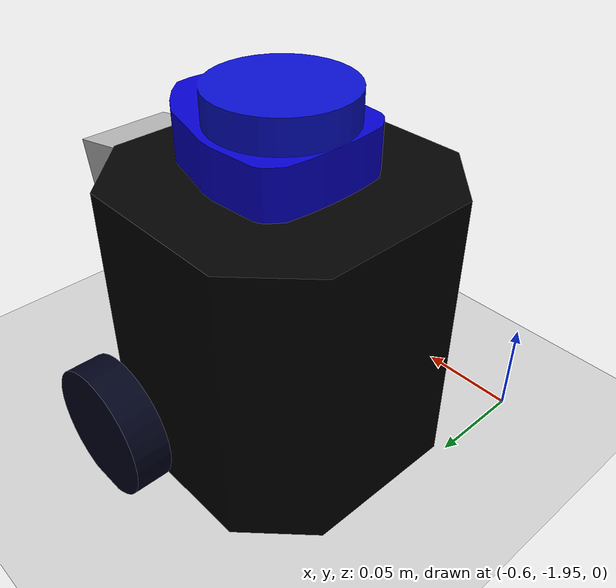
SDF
<?xml version="1.0" encoding="UTF-8"?>
<sdf version="1.6">
  <world name="default">

    <include>
      <uri>model://ground_plane</uri>
    </include>

    <include>
      <uri>model://sun</uri>
    </include>

    <scene>
      <shadows>false</shadows>
    </scene>

    <gui fullscreen='0'>
      <camera name='user_camera'>
        <pose frame=''>0.319654 -0.235002 9.29441 0 1.5138 0.009599</pose>
        <view_controller>orbit</view_controller>
        <projection_type>perspective</projection_type>
      </camera>
    </gui>

    <physics type="ode">
      <real_time_update_rate>1000.0</real_time_update_rate>
      <max_step_size>0.001</max_step_size>
      <real_time_factor>1</real_time_factor>
      <ode>
        <solver>
          <type>quick</type>
          <iters>150</iters>
          <precon_iters>0</precon_iters>
          <sor>1.400000</sor>
          <use_dynamic_moi_rescaling>1</use_dynamic_moi_rescaling>
        </solver>
        <constraints>
          <cfm>0.00001</cfm>
          <erp>0.2</erp>
          <contact_max_correcting_vel>2000.000000</contact_max_correcting_vel>
          <contact_surface_layer>0.01000</contact_surface_layer>
        </constraints>
      </ode>
    </physics>

    <model name="Track_with_model">
      <static>1</static>
      <include>
        <pose>0 0 0.002 0.0 0.0 0.0</pose>
        <uri>model://track_2</uri>
      </include>
    </model>

    <include>
      <pose>-0.5 -1.85 0.01 0 0 0</pose>
      <uri>model://camburger</uri>
    </include>

  </world>
</sdf>

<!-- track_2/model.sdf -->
<sdf version="1.5">
<model name="track">
  <static>true</static>
    <link name="floor">
      <collision name="collision">
        <geometry>
          <plane>
            <normal>0 0 1</normal>
            <size>4.0 4.0</size>
          </plane>
        </geometry>
        <surface>
          <friction>
            <ode>
              <mu>100</mu>
              <mu2>50</mu2>
            </ode>
          </friction>
        </surface>
      </collision>

      <visual name="visual">
        <cast_shadows>false</cast_shadows>
        <geometry>
          <plane>
            <normal>0 0 1</normal>
            <size>5 5</size>
          </plane>
        </geometry>
        <material>
          <script>
            <uri>model://track_2/materials/scripts</uri>
            <uri>model://track_2/materials/textures</uri>
            <name>ImageFloor/Image</name>
          </script>
        </material>
      </visual>
    </link>
  </model>
</sdf>

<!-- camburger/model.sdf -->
<sdf version="1.5">
  <model name="camburger">
    <pose>0.0 0.0 0.0 0.0 0.0 0.0</pose>

    <link name="base_footprint"/>

    <link name="base_link">

      <inertial>
        <pose>-0.032 0 0.070 0 0 0</pose>
        <inertia>
          <ixx>7.2397393e-01</ixx>
          <ixy>4.686399e-10</ixy>
          <ixz>-1.09525703e-08</ixz>
          <iyy>7.2397393e-01</iyy>
          <iyz>2.8582649e-09</iyz>
          <izz>6.53050163e-01</izz>
        </inertia>
        <mass>8.2573504e-01</mass>
      </inertial>

      <collision name="base_collision">
        <pose>-0.032 0 0.070 0 0 0</pose>
        <geometry>
          <box>
            <size>0.140 0.140 0.140</size>
          </box>
        </geometry>
      </collision>

      <visual name="base_visual">
        <pose>-0.032 0 0 0 0 0</pose>
        <geometry>
          <mesh>
            <uri>model://turtlebot3_burger/meshes/burger_base.dae</uri>
            <scale>0.001 0.001 0.001</scale>
          </mesh>
        </geometry>
      </visual>
    </link>

    <link name="imu_link">
      <sensor name="tb3_imu" type="imu">
        <always_on>true</always_on>
        <update_rate>200</update_rate>
        <imu>
          <angular_velocity>
            <x>
              <noise type="gaussian">
                <mean>0.0</mean>
                <stddev>2e-4</stddev>
              </noise>
            </x>
            <y>
              <noise type="gaussian">
                <mean>0.0</mean>
                <stddev>2e-4</stddev>
              </noise>
            </y>
            <z>
              <noise type="gaussian">
                <mean>0.0</mean>
                <stddev>2e-4</stddev>
              </noise>
            </z>
          </angular_velocity>
          <linear_acceleration>
            <x>
              <noise type="gaussian">
                <mean>0.0</mean>
                <stddev>1.7e-2</stddev>
              </noise>
            </x>
            <y>
              <noise type="gaussian">
                <mean>0.0</mean>
                <stddev>1.7e-2</stddev>
              </noise>
            </y>
            <z>
              <noise type="gaussian">
                <mean>0.0</mean>
                <stddev>1.7e-2</stddev>
              </noise>
            </z>
          </linear_acceleration>
        </imu>
        <plugin name="turtlebot3_imu" filename="libgazebo_ros_imu_sensor.so">
          <ros>
            <remapping>~/out:=imu</remapping>
          </ros>
        </plugin>
      </sensor>
    </link>

    <link name="base_scan">
      <inertial>
        <pose>-0.020 0 0.161 0 0 0</pose>
        <inertia>
          <ixx>0.001</ixx>
          <ixy>0.000</ixy>
          <ixz>0.000</ixz>
          <iyy>0.001</iyy>
          <iyz>0.000</iyz>
          <izz>0.001</izz>
        </inertia>
        <mass>0.114</mass>
      </inertial>

      <collision name="lidar_sensor_collision">
        <pose>-0.020 0 0.161 0 0 0</pose>
        <geometry>
          <cylinder>
            <radius>0.0508</radius>
            <length>0.055</length>
          </cylinder>
        </geometry>
      </collision>

      <visual name="lidar_sensor_visual">
        <pose>-0.032 0 0.171 0 0 0</pose>
        <geometry>
          <mesh>
            <uri>model://turtlebot3_burger/meshes/lds.dae</uri>
            <scale>0.001 0.001 0.001</scale>
          </mesh>
        </geometry>
      </visual>

      <sensor name="hls_lfcd_lds" type="ray">
        <always_on>true</always_on>
        <visualize>true</visualize>
        <pose>-0.032 0 0.171 0 0 0</pose>
        <update_rate>5</update_rate>
        <ray>
          <scan>
            <horizontal>
              <samples>360</samples>
              <resolution>1.000000</resolution>
              <min_angle>0.000000</min_angle>
              <max_angle>6.280000</max_angle>
            </horizontal>
          </scan>
          <range>
            <min>0.120000</min>
            <max>3.5</max>
            <resolution>0.015000</resolution>
          </range>
          <noise>
            <type>gaussian</type>
            <mean>0.0</mean>
            <stddev>0.01</stddev>
          </noise>
        </ray>
        <plugin name="turtlebot3_laserscan" filename="libgazebo_ros_ray_sensor.so">
          <ros>
            <remapping>~/out:=scan</remapping>
          </ros>
          <output_type>sensor_msgs/LaserScan</output_type>
          <frame_name>base_scan</frame_name>
        </plugin>
      </sensor>
    </link>

    <link name="wheel_left_link">

      <inertial>
        <pose>0 0.08 0.023 -1.57 0 0</pose>
        <inertia>
          <ixx>1.8158194e-03</ixx>
          <ixy>-9.3392e-12</ixy>
          <ixz>1.04909e-11</ixz>
          <iyy>3.2922126e-03</iyy>
          <iyz>5.75694e-11</iyz>
          <izz>1.8158194e-03</izz>
        </inertia>
        <mass>2.8498940e-02</mass>
      </inertial>

      <collision name="wheel_left_collision">
        <pose>0 0.08 0.023 -1.57 0 0</pose>
        <geometry>
          <cylinder>
            <radius>0.033</radius>
            <length>0.018</length>
          </cylinder>
        </geometry>
        <surface>
          <!-- This friction pamareter don't contain reliable data!! -->
          <friction>
            <ode>
              <mu>100000.0</mu>
              <mu2>100000.0</mu2>
              <fdir1>0 0 0</fdir1>
              <slip1>0.0</slip1>
              <slip2>0.0</slip2>
            </ode>
          </friction>
          <contact>
            <ode>
              <soft_cfm>0</soft_cfm>
              <soft_erp>0.2</soft_erp>
              <kp>1e+5</kp>
              <kd>1</kd>
              <max_vel>0.01</max_vel>
              <min_depth>0.001</min_depth>
            </ode>
          </contact>
        </surface>
      </collision>

      <visual name="wheel_left_visual">
        <pose>0 0.08 0.023 0 0 0</pose>
        <geometry>
          <mesh>
            <uri>model://turtlebot3_burger/meshes/tire.dae</uri>
            <scale>0.001 0.001 0.001</scale>
          </mesh>
        </geometry>
      </visual>
    </link>

    <link name="wheel_right_link">

      <inertial>
        <pose>0.0 -0.08 0.023 -1.57 0 0</pose>
        <inertia>
          <ixx>1.8158194e-03</ixx>
          <ixy>-9.3392e-12</ixy>
          <ixz>1.04909e-11</ixz>
          <iyy>3.2922126e-03</iyy>
          <iyz>5.75694e-11</iyz>
          <izz>1.8158194e-03</izz>
        </inertia>
        <mass>2.8498940e-02</mass>
      </inertial>

      <collision name="wheel_right_collision">
        <pose>0.0 -0.08 0.023 -1.57 0 0</pose>
        <geometry>
          <cylinder>
            <radius>0.033</radius>
            <length>0.018</length>
          </cylinder>
        </geometry>
        <surface>
          <!-- This friction pamareter don't contain reliable data!! -->
          <friction>
            <ode>
              <mu>100000.0</mu>
              <mu2>100000.0</mu2>
              <fdir1>0 0 0</fdir1>
              <slip1>0.0</slip1>
              <slip2>0.0</slip2>
            </ode>
          </friction>
          <contact>
            <ode>
              <soft_cfm>0</soft_cfm>
              <soft_erp>0.2</soft_erp>
              <kp>1e+5</kp>
              <kd>1</kd>
              <max_vel>0.01</max_vel>
              <min_depth>0.001</min_depth>
            </ode>
          </contact>
        </surface>
      </collision>

      <visual name="wheel_right_visual">
        <pose>0.0 -0.08 0.023 0 0 0</pose>
        <geometry>
          <mesh>
            <uri>model://turtlebot3_burger/meshes/tire.dae</uri>
            <scale>0.001 0.001 0.001</scale>
          </mesh>
        </geometry>
      </visual>
    </link>

    <link name='caster_back_link'>
      <pose>-0.081 0 -0.004 -1.57 0 0</pose>
      <inertial>
        <mass>0.005</mass>
        <inertia>
          <ixx>0.001</ixx>
          <ixy>0.000</ixy>
          <ixz>0.000</ixz>
          <iyy>0.001</iyy>
          <iyz>0.000</iyz>
          <izz>0.001</izz>
        </inertia>
      </inertial>
      <collision name='collision'>
        <geometry>
          <sphere>
            <radius>0.005000</radius>
          </sphere>
        </geometry>
        <surface>
          <contact>
            <ode>
              <soft_cfm>0</soft_cfm>
              <soft_erp>0.2</soft_erp>
              <kp>1e+5</kp>
              <kd>1</kd>
              <max_vel>0.01</max_vel>
              <min_depth>0.001</min_depth>
            </ode>
          </contact>
        </surface>
      </collision>
    </link>

    <link name="camera">
      <pose>0.065 0.0 0.1 0 0.2 0</pose>
      <inertial>
        <mass>0.01</mass>
        <inertia>
          <ixx>0.001</ixx>
          <ixy>0.000</ixy>
          <ixz>0.000</ixz>
          <iyy>0.001</iyy>
          <iyz>0.000</iyz>
          <izz>0.001</izz>
        </inertia>
      </inertial>
      <collision name="collision">
        <geometry>
          <box>
            <size>0.05 0.05 0.05</size>
          </box>
        </geometry>
      </collision>
      <visual name="visual">
        <geometry>
          <box>
            <size>0.05 0.05 0.05</size>
          </box>
        </geometry>
      </visual>

      <!--IMPORTANT: adding camera plugins for communication with ROS: sensor outputs, motor inputs-->
      <sensor name="camera" type="camera">
        <always_on>true</always_on>
        <visualize>true</visualize>
        <update_rate>30</update_rate>

        <camera>
          <horizontal_fov>1.047</horizontal_fov>
          <image>
            <width>640</width>
            <height>480</height>
            <format>R8G8B8</format>
          </image>
          <clip>
            <near>0.02</near>
            <far>200</far>
          </clip>
          <noise>
            <type>gaussian</type>
            <!-- Noise is sampled independently per pixel on each frame.
               That pixel's noise value is added to each of its color
               channels, which at that point lie in the range [0,1]. -->
            <mean>0.0</mean>
            <stddev>0.007</stddev>
          </noise>
        </camera>

        <!--PLUGIN FOR CAMERA FRAME OUTPUT-->
        <plugin name="camera_driver" filename="libgazebo_ros_camera.so">
          <ros>
          </ros>
        </plugin>
      </sensor>
    </link>

    <!--Joints definition-->
    <joint name="camera_joint" type="fixed">
      <child>camera</child>
      <parent>base_link</parent>
      <axis>
        <xyz>0 0 1</xyz>
      </axis>
    </joint>

    <joint name="base_joint" type="fixed">
      <parent>base_footprint</parent>
      <child>base_link</child>
      <pose>0.0 0.0 0.010 0 0 0</pose>
    </joint>

    <joint name="wheel_left_joint" type="revolute">
      <parent>base_link</parent>
      <child>wheel_left_link</child>
      <pose>0.0 0.08 0.023 -1.57 0 0</pose>
      <axis>
        <xyz>0 0 1</xyz>
      </axis>
    </joint>

    <joint name="wheel_right_joint" type="revolute">
      <parent>base_link</parent>
      <child>wheel_right_link</child>
      <pose>0.0 -0.08 0.023 -1.57 0 0</pose>
      <axis>
        <xyz>0 0 1</xyz>
      </axis>
    </joint>

    <joint name='caster_back_joint' type='ball'>
      <parent>base_link</parent>
      <child>caster_back_link</child>
    </joint>

    <joint name="imu_joint" type="fixed">
      <parent>base_link</parent>
      <child>imu_link</child>
      <pose>-0.032 0 0.068 0 0 0</pose>
      <axis>
        <xyz>0 0 1</xyz>
      </axis>
    </joint>

    <joint name="lidar_joint" type="fixed">
      <parent>base_link</parent>
      <child>base_scan</child>
      <pose>-0.032 0 0.171 0 0 0</pose>
      <axis>
        <xyz>0 0 1</xyz>
      </axis>
    </joint>

    <plugin name="turtlebot3_diff_drive" filename="libgazebo_ros_diff_drive.so">

      <ros>
      </ros>

      <update_rate>30</update_rate>

      <!-- wheels -->
      <left_joint>wheel_left_joint</left_joint>
      <right_joint>wheel_right_joint</right_joint>

      <!-- kinematics -->
      <wheel_separation>0.160</wheel_separation>
      <wheel_diameter>0.066</wheel_diameter>

      <!-- limits -->
      <max_wheel_torque>20</max_wheel_torque>
      <max_wheel_acceleration>1.0</max_wheel_acceleration>

      <command_topic>cmd_vel</command_topic>

      <!-- output -->
      <publish_odom>true</publish_odom>
      <publish_odom_tf>true</publish_odom_tf>
      <publish_wheel_tf>false</publish_wheel_tf>

      <odometry_topic>odom</odometry_topic>
      <odometry_frame>odom</odometry_frame>
      <robot_base_frame>base_footprint</robot_base_frame>

    </plugin>

    <plugin name="turtlebot3_joint_state" filename="libgazebo_ros_joint_state_publisher.so">
      <ros>
        <remapping>~/out:=joint_states</remapping>
      </ros>
      <update_rate>30</update_rate>
      <joint_name>wheel_left_joint</joint_name>
      <joint_name>wheel_right_joint</joint_name>
    </plugin>

  </model>
</sdf>
